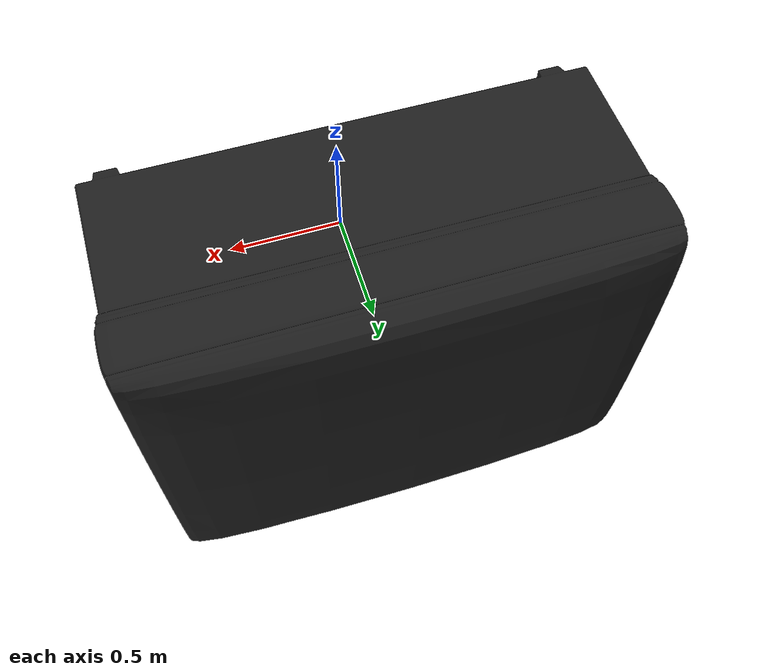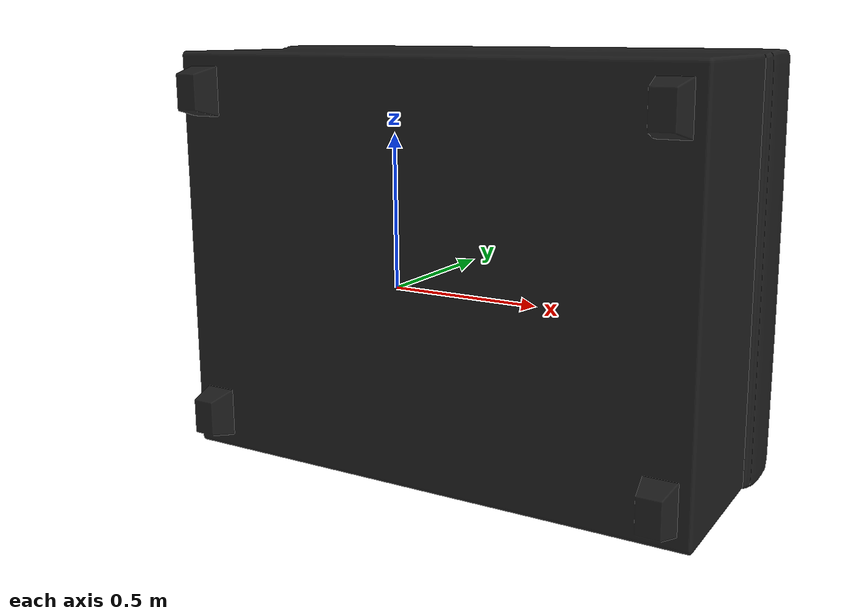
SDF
<?xml version='1.0'?>
<sdf version='1.6'>
  <model name='OttomanDouble'>
    <link name='link'>
      <pose frame=''>0 0 0 0 -0 0</pose>
      <self_collide>0</self_collide>
      <kinematic>0</kinematic>
      <gravity>1</gravity>
      <inertial>
        <mass>1</mass>
        <pose frame=''>0 0 0 0 -0 0</pose>
        <inertia>
          <ixx>1</ixx>
          <ixy>0</ixy>
          <ixz>0</ixz>
          <iyy>1</iyy>
          <iyz>0</iyz>
          <izz>1</izz>
        </inertia>
      </inertial>
      <visual name='visual'>
        <geometry>
          <mesh>
            <uri>model://OttomanDouble/meshes/ottomandouble.obj</uri>
            <scale>1 1 1</scale>
          </mesh>
        </geometry>
        <material>
          <shader type='pixel'>
            <normal_map>__default__</normal_map>
          </shader>
          <ambient>0.1 0.1 0.1 1</ambient>
          <diffuse>0.1 0.1 0.1 1</diffuse>
          <specular>0.01 0.01 0.01 1</specular>
          <emissive>0 0 0 1</emissive>
          <script>
            <name>Gazebo/FlatBlack</name>
          </script>
        </material>
        <pose frame=''>0 0 0 0 -0 0</pose>
        <cast_shadows>1</cast_shadows>
        <transparency>0</transparency>
      </visual>
      <collision name='collision'>
        <laser_retro>0</laser_retro>
        <max_contacts>10</max_contacts>
        <pose frame=''>0 0 0 0 -0 0</pose>
        <geometry>
          <mesh>
            <uri>model://OttomanDouble/meshes/ottomandouble.obj</uri>
            <scale>1 1 1</scale>
          </mesh>
        </geometry>
        <surface>
          <friction>
            <ode>
              <mu>1</mu>
              <mu2>1</mu2>
              <fdir1>0 0 0</fdir1>
              <slip1>0</slip1>
              <slip2>0</slip2>
            </ode>
            <torsional>
              <coefficient>1</coefficient>
              <patch_radius>0</patch_radius>
              <surface_radius>0</surface_radius>
              <use_patch_radius>1</use_patch_radius>
              <ode>
                <slip>0</slip>
              </ode>
            </torsional>
          </friction>
          <bounce>
            <restitution_coefficient>0</restitution_coefficient>
            <threshold>1e+06</threshold>
          </bounce>
          <contact>
            <collide_without_contact>0</collide_without_contact>
            <collide_without_contact_bitmask>1</collide_without_contact_bitmask>
            <collide_bitmask>1</collide_bitmask>
            <ode>
              <soft_cfm>0</soft_cfm>
              <soft_erp>0.2</soft_erp>
              <kp>1e+13</kp>
              <kd>1</kd>
              <max_vel>0.01</max_vel>
              <min_depth>0</min_depth>
            </ode>
            <bullet>
              <split_impulse>1</split_impulse>
              <split_impulse_penetration_threshold>-0.01</split_impulse_penetration_threshold>
              <soft_cfm>0</soft_cfm>
              <soft_erp>0.2</soft_erp>
              <kp>1e+13</kp>
              <kd>1</kd>
            </bullet>
          </contact>
        </surface>
      </collision>
    </link>
    <static>1</static>
    <allow_auto_disable>1</allow_auto_disable>
  </model>
</sdf>
